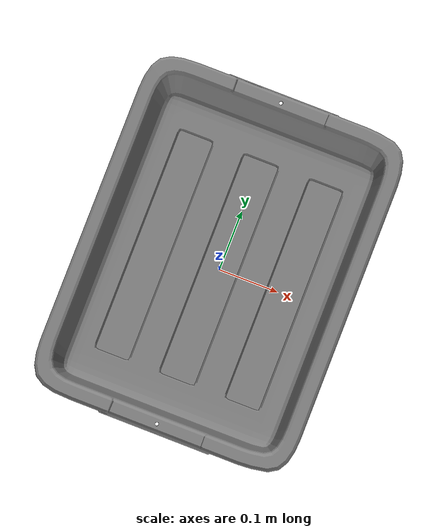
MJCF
<mujoco model="bin">

    <compiler angle="radian" meshdir="./" autolimits="true" />
    <option impratio="10" />
    <default>
        <default class="visual">
            <geom type="mesh" contype="0" conaffinity="0" group="2" />
        </default>
        <default class="collision">
            <geom type="mesh" group="3" />
        </default>
    </default>

    <asset>
        <mesh file="ToteA.L.obj" name="tote" />
        <mesh file="ToteA.L000.obj" name="tote_collision_00" />
        <mesh file="ToteA.L001.obj" name="tote_collision_01" />
        <mesh file="ToteA.L002.obj" name="tote_collision_02" />
        <mesh file="ToteA.L003.obj" name="tote_collision_03" />
        <mesh file="ToteA.L004.obj" name="tote_collision_04" />
        <mesh file="ToteA.L005.obj" name="tote_collision_05" />
        <mesh file="ToteA.L006.obj" name="tote_collision_06" />
        <mesh file="ToteA.L007.obj" name="tote_collision_07" />
        <mesh file="ToteA.L008.obj" name="tote_collision_08" />
        <mesh file="ToteA.L009.obj" name="tote_collision_09" />
    </asset>
    <worldbody>
        <body name="bin">
            <geom mesh="tote" class="visual" />
            <geom mesh="tote_collision_00" class="collision" />
            <geom mesh="tote_collision_01" class="collision" />
            <geom mesh="tote_collision_02" class="collision" />
            <geom mesh="tote_collision_03" class="collision" />
            <geom mesh="tote_collision_04" class="collision" />
            <geom mesh="tote_collision_05" class="collision" />
            <geom mesh="tote_collision_06" class="collision" />
            <geom mesh="tote_collision_07" class="collision" />
            <geom mesh="tote_collision_08" class="collision" />
            <geom mesh="tote_collision_09" class="collision" />
        </body>
    </worldbody>
</mujoco>
